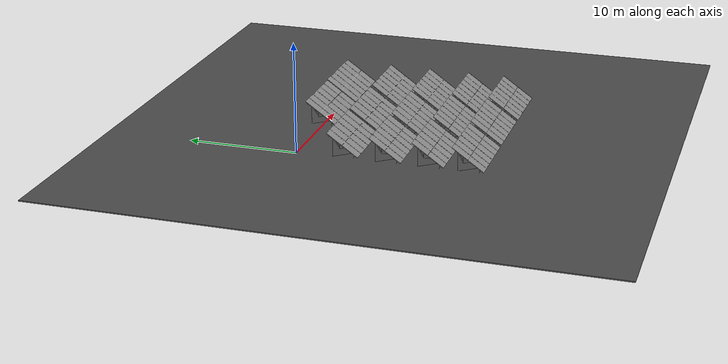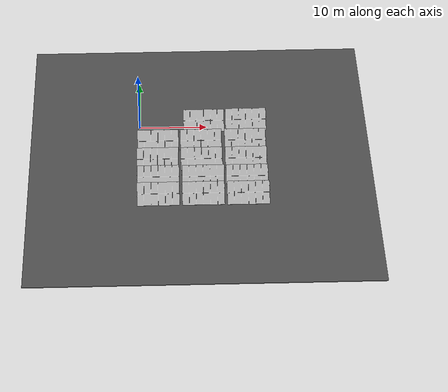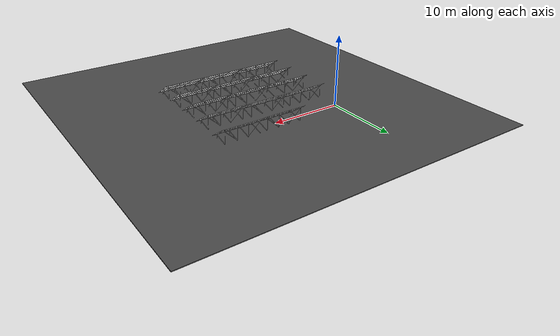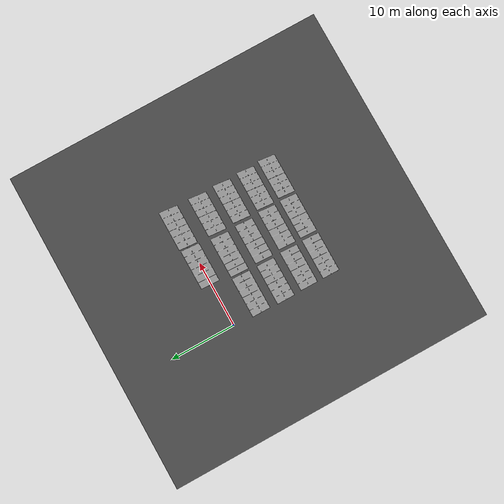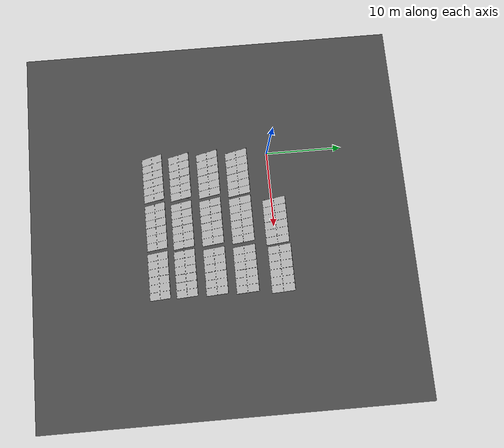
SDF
<?xml version="1.0" ?>
<sdf version="1.5">
  <world name="default">

    <gui>
      <plugin name="video_widget" filename="libgazebo_video_stream_widget.so"/>
    </gui>

    <!-- A global light source -->
    <include>
      <uri>model://sun</uri>
    </include>

    <!-- A ground plane -->

<model name='gramado'>
      <static>1</static>
      <link name='link'>
        <collision name='collision'>
          <geometry>
            <box>
              <size>50 50 0.1</size>
            </box>
          </geometry>
          <max_contacts>10</max_contacts>
          <surface>
            <contact>
              <ode/>
            </contact>
            <bounce/>
            <friction>
              <torsional>
                <ode/>
              </torsional>
              <ode/>
            </friction>
          </surface>
        </collision>
        <visual name='visual'>
          <cast_shadows>0</cast_shadows>
          <geometry>
            <box>
              <size>50 50 0.1</size>
            </box>
          </geometry>
          <material>
            <script>
              <uri>model://gramado/materials/scripts</uri>
              <uri>model://gramado/materials/textures</uri>
              <name>vrc/asphalt</name>
            </script>
          </material>
        </visual>
        <self_collide>0</self_collide>
        <kinematic>0</kinematic>
        <gravity>1</gravity>
      </link>
      <pose frame=''>8.88656 -7.03656 0 0 -0 0</pose>
    </model>
    <model name='Painel Solar'>
      <static>1</static>
      <link name='link'>
        <visual name='painel_solar'>
          <cast_shadows>1</cast_shadows>
          <pose frame=''>0 0 0 0 -0 0</pose>
          <geometry>
            <mesh>
              <uri>model://painel_solar/meshes/solar.dae</uri>
              <scale>1 1 1</scale>
            </mesh>
          </geometry>
        </visual>
        <self_collide>0</self_collide>
        <kinematic>0</kinematic>
        <gravity>1</gravity>
      </link>
      <pose frame=''>2.60345 0.121386 0 0 -0 0</pose>
    </model>
    <model name='Painel Solar_0'>
      <static>1</static>
      <link name='link'>
        <visual name='painel_solar'>
          <cast_shadows>1</cast_shadows>
          <pose frame=''>0 0 0 0 -0 0</pose>
          <geometry>
            <mesh>
              <uri>model://painel_solar/meshes/solar.dae</uri>
              <scale>1 1 1</scale>
            </mesh>
          </geometry>
        </visual>
        <self_collide>0</self_collide>
        <kinematic>0</kinematic>
        <gravity>1</gravity>
      </link>
      <pose frame=''>8.87582 0.227139 0 0 -0 0</pose>
    </model>
    <model name='Painel Solar_1'>
      <static>1</static>
      <link name='link'>
        <visual name='painel_solar'>
          <cast_shadows>1</cast_shadows>
          <pose frame=''>0 0 0 0 -0 0</pose>
          <geometry>
            <mesh>
              <uri>model://painel_solar/meshes/solar.dae</uri>
              <scale>1 1 1</scale>
            </mesh>
          </geometry>
        </visual>
        <self_collide>0</self_collide>
        <kinematic>0</kinematic>
        <gravity>1</gravity>
      </link>
      <pose frame=''>-4.25507 -4.27703 0 0 -0 0</pose>
    </model>
    <model name='Painel Solar_2'>
      <static>1</static>
      <link name='link'>
        <visual name='painel_solar'>
          <cast_shadows>1</cast_shadows>
          <pose frame=''>0 0 0 0 -0 0</pose>
          <geometry>
            <mesh>
              <uri>model://painel_solar/meshes/solar.dae</uri>
              <scale>1 1 1</scale>
            </mesh>
          </geometry>
        </visual>
        <self_collide>0</self_collide>
        <kinematic>0</kinematic>
        <gravity>1</gravity>
      </link>
      <pose frame=''>2.06836 -4.29434 0 0 -0 0</pose>
    </model>
    <model name='Painel Solar_3'>
      <static>1</static>
      <link name='link'>
        <visual name='painel_solar'>
          <cast_shadows>1</cast_shadows>
          <pose frame=''>0 0 0 0 -0 0</pose>
          <geometry>
            <mesh>
              <uri>model://painel_solar/meshes/solar.dae</uri>
              <scale>1 1 1</scale>
            </mesh>
          </geometry>
        </visual>
        <self_collide>0</self_collide>
        <kinematic>0</kinematic>
        <gravity>1</gravity>
      </link>
      <pose frame=''>8.58987 -4.3117 0 0 -0 0</pose>
    </model>
    <model name='Painel Solar_4'>
      <static>1</static>
      <link name='link'>
        <visual name='painel_solar'>
          <cast_shadows>1</cast_shadows>
          <pose frame=''>0 0 0 0 -0 0</pose>
          <geometry>
            <mesh>
              <uri>model://painel_solar/meshes/solar.dae</uri>
              <scale>1 1 1</scale>
            </mesh>
          </geometry>
        </visual>
        <self_collide>0</self_collide>
        <kinematic>0</kinematic>
        <gravity>1</gravity>
      </link>
      <pose frame=''>-4.37608 -8.16933 0 0 -0 0</pose>
    </model>
    <model name='Painel Solar_5'>
      <static>1</static>
      <link name='link'>
        <visual name='painel_solar'>
          <cast_shadows>1</cast_shadows>
          <pose frame=''>0 0 0 0 -0 0</pose>
          <geometry>
            <mesh>
              <uri>model://painel_solar/meshes/solar.dae</uri>
              <scale>1 1 1</scale>
            </mesh>
          </geometry>
        </visual>
        <self_collide>0</self_collide>
        <kinematic>0</kinematic>
        <gravity>1</gravity>
      </link>
      <pose frame=''>2.06823 -8.23086 0 0 -0 0</pose>
    </model>
    <model name='Painel Solar_6'>
      <static>1</static>
      <link name='link'>
        <visual name='painel_solar'>
          <cast_shadows>1</cast_shadows>
          <pose frame=''>0 0 0 0 -0 0</pose>
          <geometry>
            <mesh>
              <uri>model://painel_solar/meshes/solar.dae</uri>
              <scale>1 1 1</scale>
            </mesh>
          </geometry>
        </visual>
        <self_collide>0</self_collide>
        <kinematic>0</kinematic>
        <gravity>1</gravity>
      </link>
      <pose frame=''>8.55502 -8.22212 0 0 -0 0</pose>
    </model>
    <model name='Painel Solar_7'>
      <static>1</static>
      <link name='link'>
        <visual name='painel_solar'>
          <cast_shadows>1</cast_shadows>
          <pose frame=''>0 0 0 0 -0 0</pose>
          <geometry>
            <mesh>
              <uri>model://painel_solar/meshes/solar.dae</uri>
              <scale>1 1 1</scale>
            </mesh>
          </geometry>
        </visual>
        <self_collide>0</self_collide>
        <kinematic>0</kinematic>
        <gravity>1</gravity>
      </link>
      <pose frame=''>-4.30602 -11.9474 0 0 -0 0</pose>
    </model>
    <model name='Painel Solar_8'>
      <static>1</static>
      <link name='link'>
        <visual name='painel_solar'>
          <cast_shadows>1</cast_shadows>
          <pose frame=''>0 0 0 0 -0 0</pose>
          <geometry>
            <mesh>
              <uri>model://painel_solar/meshes/solar.dae</uri>
              <scale>1 1 1</scale>
            </mesh>
          </geometry>
        </visual>
        <self_collide>0</self_collide>
        <kinematic>0</kinematic>
        <gravity>1</gravity>
      </link>
      <pose frame=''>2.19703 -12.0249 0 0 -0 0</pose>
    </model>
    <model name='Painel Solar_9'>
      <static>1</static>
      <link name='link'>
        <visual name='painel_solar'>
          <cast_shadows>1</cast_shadows>
          <pose frame=''>0 0 0 0 -0 0</pose>
          <geometry>
            <mesh>
              <uri>model://painel_solar/meshes/solar.dae</uri>
              <scale>1 1 1</scale>
            </mesh>
          </geometry>
        </visual>
        <self_collide>0</self_collide>
        <kinematic>0</kinematic>
        <gravity>1</gravity>
      </link>
      <pose frame=''>8.53753 -12.0539 0 0 -0 0</pose>
    </model>
    <model name='Painel Solar_10'>
      <static>1</static>
      <link name='link'>
        <visual name='painel_solar'>
          <cast_shadows>1</cast_shadows>
          <pose frame=''>0 0 0 0 -0 0</pose>
          <geometry>
            <mesh>
              <uri>model://painel_solar/meshes/solar.dae</uri>
              <scale>1 1 1</scale>
            </mesh>
          </geometry>
        </visual>
        <self_collide>0</self_collide>
        <kinematic>0</kinematic>
        <gravity>1</gravity>
      </link>
      <pose frame=''>-4.32912 -15.4665 0 0 -0 0</pose>
    </model>
    <model name='Painel Solar_11'>
      <static>1</static>
      <link name='link'>
        <visual name='painel_solar'>
          <cast_shadows>1</cast_shadows>
          <pose frame=''>0 0 0 0 -0 0</pose>
          <geometry>
            <mesh>
              <uri>model://painel_solar/meshes/solar.dae</uri>
              <scale>1 1 1</scale>
            </mesh>
          </geometry>
        </visual>
        <self_collide>0</self_collide>
        <kinematic>0</kinematic>
        <gravity>1</gravity>
      </link>
      <pose frame=''>2.12919 -15.4647 0 0 -0 0</pose>
    </model>
    <model name='Painel Solar_12'>
      <static>1</static>
      <link name='link'>
        <visual name='painel_solar'>
          <cast_shadows>1</cast_shadows>
          <pose frame=''>0 0 0 0 -0 0</pose>
          <geometry>
            <mesh>
              <uri>model://painel_solar/meshes/solar.dae</uri>
              <scale>1 1 1</scale>
            </mesh>
          </geometry>
        </visual>
        <self_collide>0</self_collide>
        <kinematic>0</kinematic>
        <gravity>1</gravity>
      </link>
      <pose frame=''>8.56858 -15.5025 0 0 -0 0</pose>
    </model>

    <scene>
      <ambient>0.01 0.01 0.01 1</ambient>
      <sky>
        <clouds>
          <speed>12</speed>
        </clouds>
      </sky>
      <shadows>1</shadows>
      <background>0.7 0.7 0.7 1</background>
    </scene>
    <light name='sun1' type='directional'>
      <pose frame=''>50 0 150 0 -0 0</pose>
      <diffuse>1 1 1 1</diffuse>
      <specular>0.1 0.1 0.1 1</specular>
      <direction>0.3 0.3 -1</direction>
      <cast_shadows>0</cast_shadows>
    </light>
    <light name='sun_diffuse' type='directional'>
      <pose frame=''>-50 0 -150 0 -0 0</pose>
      <diffuse>0.6 0.6 0.6 1</diffuse>
      <specular>0 0 0 1</specular>
      <direction>-0.3 -0.3 -1</direction>
      <cast_shadows>0</cast_shadows>
    </light>
    <light name='sun2' type='directional'>
      <pose frame=''>0 50 0 0 -0 0</pose>
      <diffuse>1 1 1 1</diffuse>
      <specular>0.1 0.1 0.1 1</specular>
      <direction>-0.3 0.3 -1</direction>
      <cast_shadows>0</cast_shadows>
    </light>
    <light name='sun3' type='directional'>
      <pose frame=''>0 -50 0 0 -0 0</pose>
      <diffuse>1 1 1 1</diffuse>
      <specular>0.1 0.1 0.1 1</specular>
      <direction>0.3 -0.3 1</direction>
      <cast_shadows>0</cast_shadows>
    </light>
    <model name='world_ned'>
      <pose frame=''>0 0 0 0 -0 0</pose>
      <static>1</static>
      <link name='world_ned'>
        <gravity>0</gravity>
        <pose frame=''>0 0 0 -3.14159 -0 1.5708</pose>
        <visual name='N_visual'>
          <pose frame=''>0.25 0 0 1.5708 -0 1.5708</pose>
          <geometry>
            <cylinder>
              <radius>0.01</radius>
              <length>0.5</length>
            </cylinder>
          </geometry>
          <material>
            <script>
              <uri>file://media/materials/scripts/gazebo.material</uri>
              <name>Gazebo/Red</name>
            </script>
          </material>
        </visual>
        <visual name='E_visual'>
          <pose frame=''>0 0.25 0 1.5708 -0 0</pose>
          <geometry>
            <cylinder>
              <radius>0.01</radius>
              <length>0.5</length>
            </cylinder>
          </geometry>
          <material>
            <script>
              <uri>file://media/materials/scripts/gazebo.material</uri>
              <name>Gazebo/Green</name>
            </script>
          </material>
        </visual>
        <visual name='D_visual'>
          <pose frame=''>0 0 0.25 0 -0 0</pose>
          <geometry>
            <cylinder>
              <radius>0.01</radius>
              <length>0.5</length>
            </cylinder>
          </geometry>
          <material>
            <script>
              <uri>file://media/materials/scripts/gazebo.material</uri>
              <name>Gazebo/Blue</name>
            </script>
          </material>
        </visual>
        <self_collide>0</self_collide>
        <kinematic>0</kinematic>
      </link>
    </model>

    <physics name='default_physics' default='0' type='ode'>
      <gravity>0 0 -9.8066</gravity>
      <ode>
        <solver>
          <type>quick</type>
          <iters>50</iters>
          <sor>1.0</sor>
          <use_dynamic_moi_rescaling>0</use_dynamic_moi_rescaling>
        </solver>
        <constraints>
          <cfm>0</cfm>
          <erp>0.2</erp>
          <contact_max_correcting_vel>100</contact_max_correcting_vel>
          <contact_surface_layer>0.001</contact_surface_layer>
        </constraints>
      </ode>
      <max_step_size>0.004</max_step_size>
      <real_time_factor>1</real_time_factor>
      <real_time_update_rate>250</real_time_update_rate>
      <magnetic_field>6.0e-6 2.3e-5 -4.2e-5</magnetic_field>
    </physics>
  </world>
</sdf>
